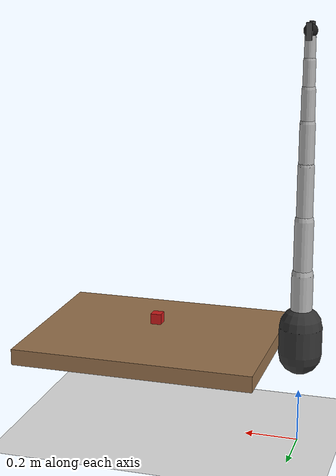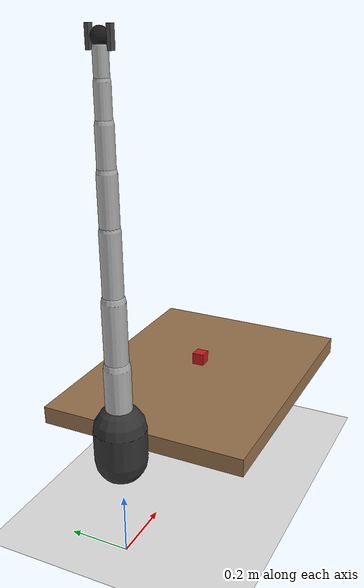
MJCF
<mujoco model="franka_basic">
  <compiler angle="radian" autolimits="true"/>
  <option timestep="0.002" gravity="0 0 -9.81"/>

  <default>
    <joint damping="2.0" armature="0.05" frictionloss="0.1"/>
    <geom friction="0.7 0.02 0.001" rgba="0.7 0.7 0.7 1"/>
  </default>

  <worldbody>
    <light pos="0 0 2" dir="0 0 -1" diffuse="0.8 0.8 0.8"/>
    <geom name="floor" type="plane" size="2 2 0.1" rgba="0.9 0.9 0.9 1"/>

    <camera name="base_cam" pos="1.2 -0.9 0.9" xyaxes="0.7 0.7 0 -0.2 0.2 0.95"/>

    <body name="table" pos="0.55 0.0 0.35">
      <geom type="box" size="0.45 0.35 0.03" rgba="0.6 0.45 0.3 1"/>
    </body>

    <body name="pick_cube" pos="0.55 0.0 0.43">
      <freejoint name="pick_cube_joint"/>
      <geom type="box" size="0.02 0.02 0.02" mass="0.05" rgba="0.8 0.1 0.1 1"/>
    </body>

    <site name="pick_target" pos="0.55 0.0 0.43" size="0.015" rgba="0.1 0.8 0.1 1"/>

    <body name="robot0/base" pos="0.0 0.0 0.4">
      <geom type="capsule" size="0.08 0.05" rgba="0.2 0.2 0.2 1"/>

      <body name="robot0/link1" pos="0 0 0.05">
        <joint name="robot0/joint1" type="hinge" axis="0 0 1" range="-2.9 2.9"/>
        <geom type="capsule" fromto="0 0 0 0 0 0.2" size="0.04"/>

        <body name="robot0/link2" pos="0 0 0.2">
          <joint name="robot0/joint2" type="hinge" axis="0 1 0" range="-1.8 1.8"/>
          <geom type="capsule" fromto="0 0 0 0 0 0.2" size="0.035"/>

          <body name="robot0/link3" pos="0 0 0.2">
            <joint name="robot0/joint3" type="hinge" axis="0 1 0" range="-2.9 2.9"/>
            <geom type="capsule" fromto="0 0 0 0 0 0.2" size="0.03"/>

            <body name="robot0/link4" pos="0 0 0.2">
              <joint name="robot0/joint4" type="hinge" axis="1 0 0" range="-3.0 0.0"/>
              <geom type="capsule" fromto="0 0 0 0 0 0.15" size="0.028"/>

              <body name="robot0/link5" pos="0 0 0.15">
                <joint name="robot0/joint5" type="hinge" axis="0 1 0" range="-2.9 2.9"/>
                <geom type="capsule" fromto="0 0 0 0 0 0.12" size="0.025"/>

                <body name="robot0/link6" pos="0 0 0.12">
                  <joint name="robot0/joint6" type="hinge" axis="1 0 0" range="-0.1 3.7"/>
                  <geom type="capsule" fromto="0 0 0 0 0 0.1" size="0.022"/>

                  <body name="robot0/link7" pos="0 0 0.1">
                    <joint name="robot0/joint7" type="hinge" axis="0 1 0" range="-2.9 2.9"/>
                    <geom type="capsule" fromto="0 0 0 0 0 0.08" size="0.02"/>

                    <body name="robot0/ee_link" pos="0 0 0.1">
                      <geom type="sphere" size="0.025" rgba="0.1 0.1 0.1 1"/>
                      <camera name="eye_in_hand" pos="0.0 0.0 0.03" quat="0.707 0.707 0 0"/>

                      <body name="robot0/left_finger" pos="0 0.03 0">
                        <joint name="robot0/finger_left" type="slide" axis="0 1 0" range="0 0.04"/>
                        <geom type="box" size="0.01 0.005 0.03" rgba="0.3 0.3 0.3 1"/>
                      </body>
                      <body name="robot0/right_finger" pos="0 -0.03 0">
                        <joint name="robot0/finger_right" type="slide" axis="0 -1 0" range="0 0.04"/>
                        <geom type="box" size="0.01 0.005 0.03" rgba="0.3 0.3 0.3 1"/>
                      </body>
                    </body>
                  </body>
                </body>
              </body>
            </body>
          </body>
        </body>
      </body>
    </body>
  </worldbody>

  <actuator>
    <position name="robot0/act1" joint="robot0/joint1" kp="150" ctrlrange="-2.9 2.9"/>
    <position name="robot0/act2" joint="robot0/joint2" kp="150" ctrlrange="-1.8 1.8"/>
    <position name="robot0/act3" joint="robot0/joint3" kp="150" ctrlrange="-2.9 2.9"/>
    <position name="robot0/act4" joint="robot0/joint4" kp="150" ctrlrange="-3.0 0.0"/>
    <position name="robot0/act5" joint="robot0/joint5" kp="100" ctrlrange="-2.9 2.9"/>
    <position name="robot0/act6" joint="robot0/joint6" kp="80" ctrlrange="-0.1 3.7"/>
    <position name="robot0/act7" joint="robot0/joint7" kp="80" ctrlrange="-2.9 2.9"/>
    <position name="robot0/grip_left" joint="robot0/finger_left" kp="300" ctrlrange="0 0.04"/>
    <position name="robot0/grip_right" joint="robot0/finger_right" kp="300" ctrlrange="0 0.04"/>
  </actuator>
</mujoco>
